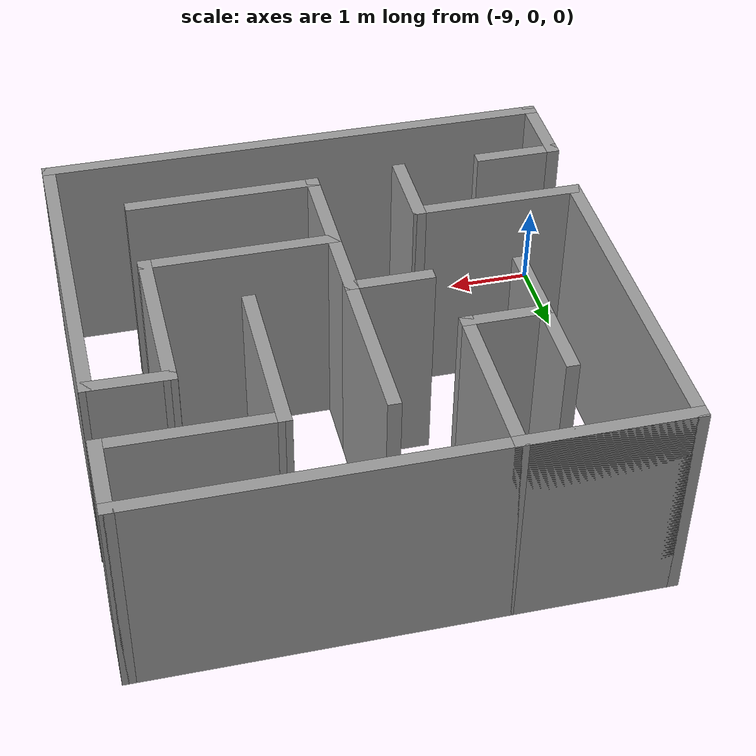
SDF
<?xml version='1.0'?>
<sdf version='1.7'>
  <model name='yey'>
    <pose>-4.49324 2.64823 0 0 -0 0</pose>
    <link name='Wall_10'>
      <collision name='Wall_10_Collision'>
        <geometry>
          <box>
            <size>2 0.15 2.5</size>
          </box>
        </geometry>
        <pose>0 0 1.25 0 -0 0</pose>
      </collision>
      <visual name='Wall_10_Visual'>
        <pose>0 0 1.25 0 -0 0</pose>
        <geometry>
          <box>
            <size>2 0.15 2.5</size>
          </box>
        </geometry>
        <material>
          <script>
            <uri>file://media/materials/scripts/gazebo.material</uri>
            <name>Gazebo/Grey</name>
          </script>
          <ambient>1 1 1 1</ambient>
        </material>
        <meta>
          <layer>0</layer>
        </meta>
      </visual>
      <pose>-0.418237 1 0 0 -0 -1.5708</pose>
    </link>
    <link name='Wall_19'>
      <collision name='Wall_19_Collision'>
        <geometry>
          <box>
            <size>6 0.15 2.5</size>
          </box>
        </geometry>
        <pose>0 0 1.25 0 -0 0</pose>
      </collision>
      <visual name='Wall_19_Visual'>
        <pose>0 0 1.25 0 -0 0</pose>
        <geometry>
          <box>
            <size>6 0.15 2.5</size>
          </box>
        </geometry>
        <material>
          <script>
            <uri>file://media/materials/scripts/gazebo.material</uri>
            <name>Gazebo/Grey</name>
          </script>
          <ambient>1 1 1 1</ambient>
        </material>
        <meta>
          <layer>0</layer>
        </meta>
      </visual>
      <pose>-1.49324 -2.775 0 0 -0 3.14159</pose>
    </link>
    <link name='Wall_20'>
      <collision name='Wall_20_Collision'>
        <geometry>
          <box>
            <size>1 0.15 2.5</size>
          </box>
        </geometry>
        <pose>0 0 1.25 0 -0 0</pose>
      </collision>
      <visual name='Wall_20_Visual'>
        <pose>0 0 1.25 0 -0 0</pose>
        <geometry>
          <box>
            <size>1 0.15 2.5</size>
          </box>
        </geometry>
        <material>
          <script>
            <uri>file://media/materials/scripts/gazebo.material</uri>
            <name>Gazebo/Grey</name>
          </script>
          <ambient>1 1 1 1</ambient>
        </material>
        <meta>
          <layer>0</layer>
        </meta>
      </visual>
      <pose>-4.41824 -2.35 0 0 -0 1.5708</pose>
    </link>
    <link name='Wall_21'>
      <collision name='Wall_21_Collision'>
        <geometry>
          <box>
            <size>1 0.15 2.5</size>
          </box>
        </geometry>
        <pose>0 0 1.25 0 -0 0</pose>
      </collision>
      <visual name='Wall_21_Visual'>
        <pose>0 0 1.25 0 -0 0</pose>
        <geometry>
          <box>
            <size>1 0.15 2.5</size>
          </box>
        </geometry>
        <material>
          <script>
            <uri>file://media/materials/scripts/gazebo.material</uri>
            <name>Gazebo/Grey</name>
          </script>
          <ambient>1 1 1 1</ambient>
        </material>
        <meta>
          <layer>0</layer>
        </meta>
      </visual>
      <pose>-3.99324 -1.925 0 0 -0 0</pose>
    </link>
    <link name='Wall_3'>
      <collision name='Wall_3_Collision'>
        <geometry>
          <box>
            <size>4 0.15 2.5</size>
          </box>
        </geometry>
        <pose>0 0 1.25 0 -0 0</pose>
      </collision>
      <visual name='Wall_3_Visual'>
        <pose>0 0 1.25 0 -0 0</pose>
        <geometry>
          <box>
            <size>4 0.15 2.5</size>
          </box>
        </geometry>
        <material>
          <script>
            <uri>file://media/materials/scripts/gazebo.material</uri>
            <name>Gazebo/Grey</name>
          </script>
          <ambient>1 1 1 1</ambient>
        </material>
        <meta>
          <layer>0</layer>
        </meta>
      </visual>
      <pose>-4.41824 0.85 0 0 -0 -1.5708</pose>
    </link>
    <link name='Wall_32'>
      <collision name='Wall_32_Collision'>
        <geometry>
          <box>
            <size>2 0.15 2.5</size>
          </box>
        </geometry>
        <pose>0 0 1.25 0 -0 0</pose>
      </collision>
      <visual name='Wall_32_Visual'>
        <pose>0 0 1.25 0 -0 0</pose>
        <geometry>
          <box>
            <size>2 0.15 2.5</size>
          </box>
        </geometry>
        <material>
          <script>
            <uri>file://media/materials/scripts/gazebo.material</uri>
            <name>Gazebo/Grey</name>
          </script>
          <ambient>1 1 1 1</ambient>
        </material>
        <meta>
          <layer>0</layer>
        </meta>
      </visual>
      <pose>-3.49324 2.775 0 0 -0 0</pose>
    </link>
    <link name='Wall_33'>
      <collision name='Wall_33_Collision'>
        <geometry>
          <box>
            <size>2 0.15 2.5</size>
          </box>
        </geometry>
        <pose>0 0 1.25 0 -0 0</pose>
      </collision>
      <visual name='Wall_33_Visual'>
        <pose>0 0 1.25 0 -0 0</pose>
        <geometry>
          <box>
            <size>2 0.15 2.5</size>
          </box>
        </geometry>
        <material>
          <script>
            <uri>file://media/materials/scripts/gazebo.material</uri>
            <name>Gazebo/Grey</name>
          </script>
          <ambient>1 1 1 1</ambient>
        </material>
        <meta>
          <layer>0</layer>
        </meta>
      </visual>
      <pose>-2.56824 1.85 0 0 -0 -1.5708</pose>
    </link>
    <link name='Wall_34'>
      <collision name='Wall_34_Collision'>
        <geometry>
          <box>
            <size>1 0.15 2.5</size>
          </box>
        </geometry>
        <pose>0 0 1.25 0 -0 0</pose>
      </collision>
      <visual name='Wall_34_Visual'>
        <pose>0 0 1.25 0 -0 0</pose>
        <geometry>
          <box>
            <size>1 0.15 2.5</size>
          </box>
        </geometry>
        <material>
          <script>
            <uri>file://media/materials/scripts/gazebo.material</uri>
            <name>Gazebo/Grey</name>
          </script>
          <ambient>1 1 1 1</ambient>
        </material>
        <meta>
          <layer>0</layer>
        </meta>
      </visual>
      <pose>-2.99324 0.925 0 0 -0 3.14159</pose>
    </link>
    <link name='Wall_35'>
      <collision name='Wall_35_Collision'>
        <geometry>
          <box>
            <size>1 0.15 2.5</size>
          </box>
        </geometry>
        <pose>0 0 1.25 0 -0 0</pose>
      </collision>
      <visual name='Wall_35_Visual'>
        <pose>0 0 1.25 0 -0 0</pose>
        <geometry>
          <box>
            <size>1 0.15 2.5</size>
          </box>
        </geometry>
        <material>
          <script>
            <uri>file://media/materials/scripts/gazebo.material</uri>
            <name>Gazebo/Grey</name>
          </script>
          <ambient>1 1 1 1</ambient>
        </material>
        <meta>
          <layer>0</layer>
        </meta>
      </visual>
      <pose>-3.41824 1.35 0 0 -0 1.5708</pose>
    </link>
    <link name='Wall_37'>
      <collision name='Wall_37_Collision'>
        <geometry>
          <box>
            <size>1 0.15 2.5</size>
          </box>
        </geometry>
        <pose>0 0 1.25 0 -0 0</pose>
      </collision>
      <visual name='Wall_37_Visual'>
        <pose>0 0 1.25 0 -0 0</pose>
        <geometry>
          <box>
            <size>1 0.15 2.5</size>
          </box>
        </geometry>
        <material>
          <script>
            <uri>file://media/materials/scripts/gazebo.material</uri>
            <name>Gazebo/Grey</name>
          </script>
          <ambient>1 1 1 1</ambient>
        </material>
        <meta>
          <layer>0</layer>
        </meta>
      </visual>
      <pose>-3.41824 0.5 0 0 -0 -1.5708</pose>
    </link>
    <link name='Wall_4'>
      <collision name='Wall_4_Collision'>
        <geometry>
          <box>
            <size>2 0.15 2.5</size>
          </box>
        </geometry>
        <pose>0 0 1.25 0 -0 0</pose>
      </collision>
      <visual name='Wall_4_Visual'>
        <pose>0 0 1.25 0 -0 0</pose>
        <geometry>
          <box>
            <size>2 0.15 2.5</size>
          </box>
        </geometry>
        <material>
          <script>
            <uri>file://media/materials/scripts/gazebo.material</uri>
            <name>Gazebo/Grey</name>
          </script>
          <ambient>1 1 1 1</ambient>
        </material>
        <meta>
          <layer>0</layer>
        </meta>
      </visual>
      <pose>-3.49324 -1.075 0 0 -0 0</pose>
    </link>
    <link name='Wall_41'>
      <collision name='Wall_41_Collision'>
        <geometry>
          <box>
            <size>1.00018 0.15 2.5</size>
          </box>
        </geometry>
        <pose>0 0 1.25 0 -0 0</pose>
      </collision>
      <visual name='Wall_41_Visual'>
        <pose>0 0 1.25 0 -0 0</pose>
        <geometry>
          <box>
            <size>1.00018 0.15 2.5</size>
          </box>
        </geometry>
        <material>
          <script>
            <uri>file://media/materials/scripts/gazebo.material</uri>
            <name>Gazebo/Grey</name>
          </script>
          <ambient>1 1 1 1</ambient>
        </material>
        <meta>
          <layer>0</layer>
        </meta>
      </visual>
      <pose>1.00676 1.06618 0 0 -0 3.12084</pose>
    </link>
    <link name='Wall_42'>
      <collision name='Wall_42_Collision'>
        <geometry>
          <box>
            <size>2 0.15 2.5</size>
          </box>
        </geometry>
        <pose>0 0 1.25 0 -0 0</pose>
      </collision>
      <visual name='Wall_42_Visual'>
        <pose>0 0 1.25 0 -0 0</pose>
        <geometry>
          <box>
            <size>2 0.15 2.5</size>
          </box>
        </geometry>
        <material>
          <script>
            <uri>file://media/materials/scripts/gazebo.material</uri>
            <name>Gazebo/Grey</name>
          </script>
          <ambient>1 1 1 1</ambient>
        </material>
        <meta>
          <layer>0</layer>
        </meta>
      </visual>
      <pose>0.581763 0.15 0 0 -0 -1.5708</pose>
    </link>
    <link name='Wall_47'>
      <collision name='Wall_47_Collision'>
        <geometry>
          <box>
            <size>2.25 0.15 2.5</size>
          </box>
        </geometry>
        <pose>0 0 1.25 0 -0 0</pose>
      </collision>
      <visual name='Wall_47_Visual'>
        <pose>0 0 1.25 0 -0 0</pose>
        <geometry>
          <box>
            <size>2.25 0.15 2.5</size>
          </box>
        </geometry>
        <material>
          <script>
            <uri>file://media/materials/scripts/gazebo.material</uri>
            <name>Gazebo/Grey</name>
          </script>
          <ambient>1 1 1 1</ambient>
        </material>
        <meta>
          <layer>0</layer>
        </meta>
      </visual>
      <pose>-0.468236 -0.775 0 0 -0 3.14159</pose>
    </link>
    <link name='Wall_48'>
      <collision name='Wall_48_Collision'>
        <geometry>
          <box>
            <size>1 0.15 2.5</size>
          </box>
        </geometry>
        <pose>0 0 1.25 0 -0 0</pose>
      </collision>
      <visual name='Wall_48_Visual'>
        <pose>0 0 1.25 0 -0 0</pose>
        <geometry>
          <box>
            <size>1 0.15 2.5</size>
          </box>
        </geometry>
        <material>
          <script>
            <uri>file://media/materials/scripts/gazebo.material</uri>
            <name>Gazebo/Grey</name>
          </script>
          <ambient>1 1 1 1</ambient>
        </material>
        <meta>
          <layer>0</layer>
        </meta>
      </visual>
      <pose>-1.51824 -0.35 0 0 -0 1.5708</pose>
    </link>
    <link name='Wall_49'>
      <collision name='Wall_49_Collision'>
        <geometry>
          <box>
            <size>1 0.15 2.5</size>
          </box>
        </geometry>
        <pose>0 0 1.25 0 -0 0</pose>
      </collision>
      <visual name='Wall_49_Visual'>
        <pose>0 0 1.25 0 -0 0</pose>
        <geometry>
          <box>
            <size>1 0.15 2.5</size>
          </box>
        </geometry>
        <material>
          <script>
            <uri>file://media/materials/scripts/gazebo.material</uri>
            <name>Gazebo/Grey</name>
          </script>
          <ambient>1 1 1 1</ambient>
        </material>
        <meta>
          <layer>0</layer>
        </meta>
      </visual>
      <pose>-1.94324 0.075 0 0 -0 3.14159</pose>
    </link>
    <link name='Wall_5'>
      <collision name='Wall_5_Collision'>
        <geometry>
          <box>
            <size>1 0.15 2.5</size>
          </box>
        </geometry>
        <pose>0 0 1.25 0 -0 0</pose>
      </collision>
      <visual name='Wall_5_Visual'>
        <pose>0 0 1.25 0 -0 0</pose>
        <geometry>
          <box>
            <size>1 0.15 2.5</size>
          </box>
        </geometry>
        <material>
          <script>
            <uri>file://media/materials/scripts/gazebo.material</uri>
            <name>Gazebo/Grey</name>
          </script>
          <ambient>1 1 1 1</ambient>
        </material>
        <meta>
          <layer>0</layer>
        </meta>
      </visual>
      <pose>-2.56824 -1.5 0 0 -0 -1.5708</pose>
    </link>
    <link name='Wall_51'>
      <collision name='Wall_51_Collision'>
        <geometry>
          <box>
            <size>2 0.15 2.5</size>
          </box>
        </geometry>
        <pose>0 0 1.25 0 -0 0</pose>
      </collision>
      <visual name='Wall_51_Visual'>
        <pose>0 0 1.25 0 -0 0</pose>
        <geometry>
          <box>
            <size>2 0.15 2.5</size>
          </box>
        </geometry>
        <material>
          <script>
            <uri>file://media/materials/scripts/gazebo.material</uri>
            <name>Gazebo/Grey</name>
          </script>
          <ambient>1 1 1 1</ambient>
        </material>
        <meta>
          <layer>0</layer>
        </meta>
      </visual>
      <pose>-1.51824 1 0 0 -0 1.5708</pose>
    </link>
    <link name='Wall_53'>
      <collision name='Wall_53_Collision'>
        <geometry>
          <box>
            <size>1.25 0.15 2.5</size>
          </box>
        </geometry>
        <pose>0 0 1.25 0 -0 0</pose>
      </collision>
      <visual name='Wall_53_Visual'>
        <pose>0 0 1.25 0 -0 0</pose>
        <geometry>
          <box>
            <size>1.25 0.15 2.5</size>
          </box>
        </geometry>
        <material>
          <script>
            <uri>file://media/materials/scripts/gazebo.material</uri>
            <name>Gazebo/Grey</name>
          </script>
          <ambient>1 1 1 1</ambient>
        </material>
        <meta>
          <layer>0</layer>
        </meta>
      </visual>
      <pose>-1.51824 -1.325 0 0 -0 -1.5708</pose>
    </link>
    <link name='Wall_54'>
      <collision name='Wall_54_Collision'>
        <geometry>
          <box>
            <size>2.25 0.15 2.5</size>
          </box>
        </geometry>
        <pose>0 0 1.25 0 -0 0</pose>
      </collision>
      <visual name='Wall_54_Visual'>
        <pose>0 0 1.25 0 -0 0</pose>
        <geometry>
          <box>
            <size>2.25 0.15 2.5</size>
          </box>
        </geometry>
        <material>
          <script>
            <uri>file://media/materials/scripts/gazebo.material</uri>
            <name>Gazebo/Grey</name>
          </script>
          <ambient>1 1 1 1</ambient>
        </material>
        <meta>
          <layer>0</layer>
        </meta>
      </visual>
      <pose>-0.468236 -1.875 0 0 -0 0</pose>
    </link>
    <link name='Wall_57'>
      <collision name='Wall_57_Collision'>
        <geometry>
          <box>
            <size>3.98236 0.15 2.5</size>
          </box>
        </geometry>
        <pose>0 0 1.25 0 -0 0</pose>
      </collision>
      <visual name='Wall_57_Visual'>
        <pose>0 0 1.25 0 -0 0</pose>
        <geometry>
          <box>
            <size>3.98236 0.15 2.5</size>
          </box>
        </geometry>
        <material>
          <script>
            <uri>file://media/materials/scripts/gazebo.material</uri>
            <name>Gazebo/Grey</name>
          </script>
          <ambient>1 1 1 1</ambient>
        </material>
        <meta>
          <layer>0</layer>
        </meta>
      </visual>
      <pose>1.43176 -0.858822 0 0 -0 -1.5708</pose>
    </link>
    <link name='Wall_7'>
      <collision name='Wall_7_Collision'>
        <geometry>
          <box>
            <size>6 0.15 2.5</size>
          </box>
        </geometry>
        <pose>0 0 1.25 0 -0 0</pose>
      </collision>
      <visual name='Wall_7_Visual'>
        <pose>0 0 1.25 0 -0 0</pose>
        <geometry>
          <box>
            <size>6 0.15 2.5</size>
          </box>
        </geometry>
        <material>
          <script>
            <uri>file://media/materials/scripts/gazebo.material</uri>
            <name>Gazebo/Grey</name>
          </script>
          <ambient>1 1 1 1</ambient>
        </material>
        <meta>
          <layer>0</layer>
        </meta>
      </visual>
      <pose>-1.49324 2.775 0 0 -0 0</pose>
    </link>
    <link name='Wall_8'>
      <collision name='Wall_8_Collision'>
        <geometry>
          <box>
            <size>1.01764 0.15 2.5</size>
          </box>
        </geometry>
        <pose>0 0 1.25 0 -0 0</pose>
      </collision>
      <visual name='Wall_8_Visual'>
        <pose>0 0 1.25 0 -0 0</pose>
        <geometry>
          <box>
            <size>1.01764 0.15 2.5</size>
          </box>
        </geometry>
        <material>
          <script>
            <uri>file://media/materials/scripts/gazebo.material</uri>
            <name>Gazebo/Grey</name>
          </script>
          <ambient>1 1 1 1</ambient>
        </material>
        <meta>
          <layer>0</layer>
        </meta>
      </visual>
      <pose>1.43176 2.34118 0 0 -0 -1.5708</pose>
    </link>
    <link name='Wall_9'>
      <collision name='Wall_9_Collision'>
        <geometry>
          <box>
            <size>2.00008 0.15 2.5</size>
          </box>
        </geometry>
        <pose>0 0 1.25 0 -0 0</pose>
      </collision>
      <visual name='Wall_9_Visual'>
        <pose>0 0 1.25 0 -0 0</pose>
        <geometry>
          <box>
            <size>2.00008 0.15 2.5</size>
          </box>
        </geometry>
        <material>
          <script>
            <uri>file://media/materials/scripts/gazebo.material</uri>
            <name>Gazebo/Grey</name>
          </script>
          <ambient>1 1 1 1</ambient>
        </material>
        <meta>
          <layer>0</layer>
        </meta>
      </visual>
      <pose>0.506763 1.91618 0 0 -0 3.13206</pose>
    </link>
    <static>1</static>
  </model>
</sdf>
